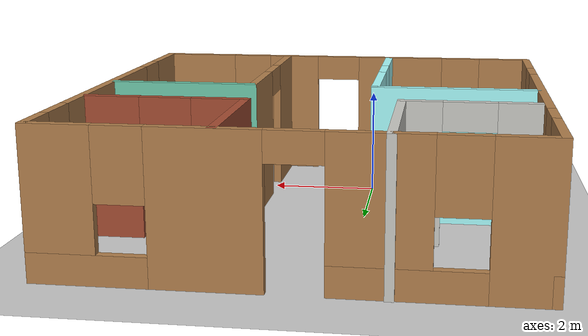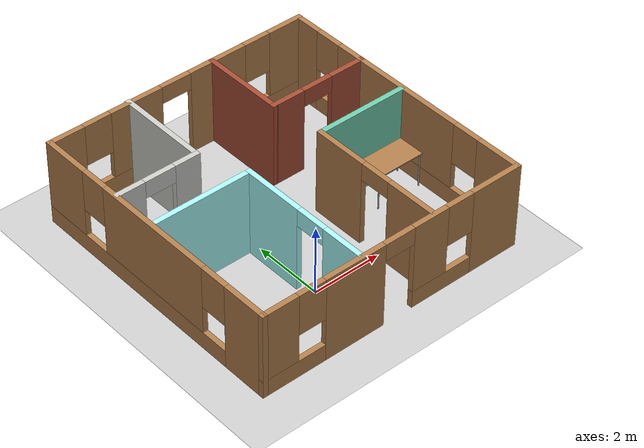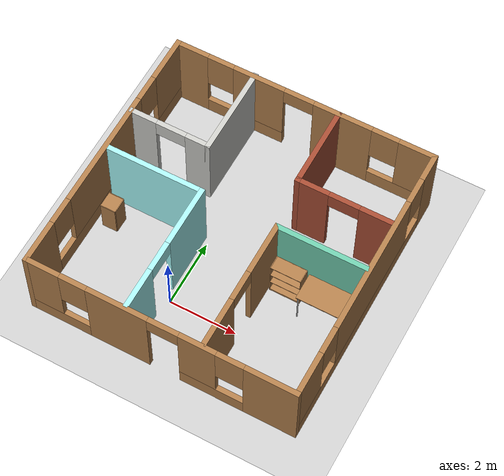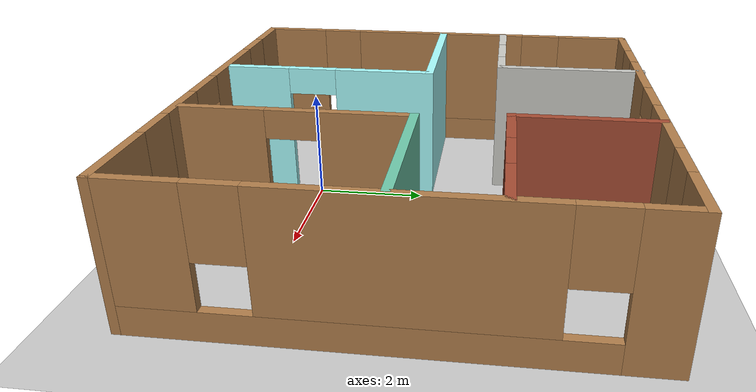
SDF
<sdf version="1.7">
 <world name="default">
  <light name="sun" type="directional">
   <pose>0 0 10 0 -0 0</pose>
   <diffuse>0.8 0.8 0.8 1</diffuse>
   <specular>0.2 0.2 0.2 1</specular>
   <attenuation>
    <range>1000</range>
    <constant>0.9</constant>
    <linear>0.01</linear>
    <quadratic>0.001</quadratic>
   </attenuation>
   <direction>-0.5 0.1 -0.9</direction>
   <spot><inner_angle>0</inner_angle><outer_angle>0</outer_angle><falloff>0</falloff></spot>
  </light>
  <model name="ground_plane">
   <static>1</static>
   <link name="link">
    <collision name="collision">
     <geometry><plane><normal>0 0 1</normal><size>100 100</size></plane></geometry>
     <surface>
      <contact><collide_bitmask>65535</collide_bitmask></contact>
      <friction><ode><mu>100</mu><mu2>50</mu2></ode></friction>
     </surface>
    </collision>
    <visual name="visual">
     <cast_shadows>0</cast_shadows>
     <geometry><plane><normal>0 0 1</normal><size>100 100</size></plane></geometry>
     <material>
      <script><uri>file://media/materials/scripts/gazebo.material</uri><name>Gazebo/Grey</name></script>
     </material>
    </visual>
   </link>
  </model>
  <gravity>0 0 -9.8</gravity>
  <magnetic_field>6e-06 2.3e-05 -4.2e-05</magnetic_field>
  <atmosphere type="adiabatic"/>
  <physics type="ode">
   <max_step_size>0.001</max_step_size>
   <real_time_factor>1</real_time_factor>
   <real_time_update_rate>1000</real_time_update_rate>
  </physics>
  <scene><ambient>0.4 0.4 0.4 1</ambient><background>0.7 0.7 0.7 1</background><shadows>1</shadows></scene>
  <spherical_coordinates>
   <surface_model>EARTH_WGS84</surface_model>
   <latitude_deg>0</latitude_deg>
   <longitude_deg>0</longitude_deg>
   <elevation>0</elevation>
   <heading_deg>0</heading_deg>
  </spherical_coordinates>
  <model name="casa">
   <pose>0.795 2.13883 0 0 -0 0</pose>
   <link name="Wall_0">
    <pose>-3.925 -0.013832 0 0 -0 1.5708</pose>
    <visual name="Wall_0_Visual_0">
     <pose>-3.33692 0 1.25 0 -0 0</pose>
     <geometry><box><size>1.32617 0.15 2.5</size></box></geometry>
     <material>
      <script><uri>file://media/materials/scripts/gazebo.material</uri><name>Gazebo/Wood</name></script>
      <ambient>1 1 1 1</ambient>
     </material>
     <meta><layer>0</layer></meta>
    </visual>
    <collision name="Wall_0_Collision_0">
     <geometry><box><size>1.32617 0.15 2.5</size></box></geometry>
     <pose>-3.33692 0 1.25 0 -0 0</pose>
    </collision>
    <visual name="Wall_0_Visual_1">
     <pose>0.663083 0 0.25 0 -0 0</pose>
     <geometry><box><size>6.67384 0.15 0.5</size></box></geometry>
     <material>
      <script><uri>file://media/materials/scripts/gazebo.material</uri><name>Gazebo/Wood</name></script>
      <ambient>1 1 1 1</ambient>
     </material>
     <meta><layer>0</layer></meta>
    </visual>
    <collision name="Wall_0_Collision_1">
     <geometry><box><size>6.67384 0.15 0.5</size></box></geometry>
     <pose>0.663083 0 0.25 0 -0 0</pose>
    </collision>
    <visual name="Wall_0_Visual_2">
     <pose>-0.054335 0 1.5 0 -0 0</pose>
     <geometry><box><size>3.639 0.15 2</size></box></geometry>
     <material>
      <script><uri>file://media/materials/scripts/gazebo.material</uri><name>Gazebo/Wood</name></script>
      <ambient>1 1 1 1</ambient>
     </material>
     <meta><layer>0</layer></meta>
    </visual>
    <collision name="Wall_0_Collision_2">
     <geometry><box><size>3.639 0.15 2</size></box></geometry>
     <pose>-0.054335 0 1.5 0 -0 0</pose>
    </collision>
    <visual name="Wall_0_Visual_3">
     <pose>3.28258 0 1.5 0 -0 0</pose>
     <geometry><box><size>1.43484 0.15 2</size></box></geometry>
     <material>
      <script><uri>file://media/materials/scripts/gazebo.material</uri><name>Gazebo/Wood</name></script>
      <ambient>1 1 1 1</ambient>
     </material>
     <meta><layer>0</layer></meta>
    </visual>
    <collision name="Wall_0_Collision_3">
     <geometry><box><size>1.43484 0.15 2</size></box></geometry>
     <pose>3.28258 0 1.5 0 -0 0</pose>
    </collision>
    <visual name="Wall_0_Visual_4">
     <pose>-2.27384 0 1.9 0 -0 0</pose>
     <geometry><box><size>0.8 0.15 1.2</size></box></geometry>
     <material>
      <script><uri>file://media/materials/scripts/gazebo.material</uri><name>Gazebo/Wood</name></script>
      <ambient>1 1 1 1</ambient>
     </material>
     <meta><layer>0</layer></meta>
    </visual>
    <collision name="Wall_0_Collision_4">
     <geometry><box><size>0.8 0.15 1.2</size></box></geometry>
     <pose>-2.27384 0 1.9 0 -0 0</pose>
    </collision>
    <visual name="Wall_0_Visual_5">
     <pose>2.16517 0 1.9 0 -0 0</pose>
     <geometry><box><size>0.8 0.15 1.2</size></box></geometry>
     <material>
      <script><uri>file://media/materials/scripts/gazebo.material</uri><name>Gazebo/Wood</name></script>
      <ambient>1 1 1 1</ambient>
     </material>
     <meta><layer>0</layer></meta>
    </visual>
    <collision name="Wall_0_Collision_5">
     <geometry><box><size>0.8 0.15 1.2</size></box></geometry>
     <pose>2.16517 0 1.9 0 -0 0</pose>
    </collision>
   </link>
   <link name="Wall_1">
    <pose>0 3.91117 0 0 -0 0</pose>
    <visual name="Wall_1_Visual_0">
     <pose>-3.47697 0 1.25 0 -0 0</pose>
     <geometry><box><size>1.04606 0.15 2.5</size></box></geometry>
     <material>
      <script><uri>file://media/materials/scripts/gazebo.material</uri><name>Gazebo/Wood</name></script>
      <ambient>1 1 1 1</ambient>
     </material>
     <meta><layer>0</layer></meta>
    </visual>
    <collision name="Wall_1_Collision_0">
     <geometry><box><size>1.04606 0.15 2.5</size></box></geometry>
     <pose>-3.47697 0 1.25 0 -0 0</pose>
    </collision>
    <visual name="Wall_1_Visual_1">
     <pose>1.20081 0 1.25 0 -0 0</pose>
     <geometry><box><size>1.7645 0.15 2.5</size></box></geometry>
     <material>
      <script><uri>file://media/materials/scripts/gazebo.material</uri><name>Gazebo/Wood</name></script>
      <ambient>1 1 1 1</ambient>
     </material>
     <meta><layer>0</layer></meta>
    </visual>
    <collision name="Wall_1_Collision_1">
     <geometry><box><size>1.7645 0.15 2.5</size></box></geometry>
     <pose>1.20081 0 1.25 0 -0 0</pose>
    </collision>
    <visual name="Wall_1_Visual_2">
     <pose>-1.76769 0 0.25 0 -0 0</pose>
     <geometry><box><size>2.3725 0.15 0.5</size></box></geometry>
     <material>
      <script><uri>file://media/materials/scripts/gazebo.material</uri><name>Gazebo/Wood</name></script>
      <ambient>1 1 1 1</ambient>
     </material>
     <meta><layer>0</layer></meta>
    </visual>
    <collision name="Wall_1_Collision_2">
     <geometry><box><size>2.3725 0.15 0.5</size></box></geometry>
     <pose>-1.76769 0 0.25 0 -0 0</pose>
    </collision>
    <visual name="Wall_1_Visual_3">
     <pose>3.04153 0 0.25 0 -0 0</pose>
     <geometry><box><size>1.91694 0.15 0.5</size></box></geometry>
     <material>
      <script><uri>file://media/materials/scripts/gazebo.material</uri><name>Gazebo/Wood</name></script>
      <ambient>1 1 1 1</ambient>
     </material>
     <meta><layer>0</layer></meta>
    </visual>
    <collision name="Wall_1_Collision_3">
     <geometry><box><size>1.91694 0.15 0.5</size></box></geometry>
     <pose>3.04153 0 0.25 0 -0 0</pose>
    </collision>
    <visual name="Wall_1_Visual_4">
     <pose>-1.36769 0 1.5 0 -0 0</pose>
     <geometry><box><size>1.5725 0.15 2</size></box></geometry>
     <material>
      <script><uri>file://media/materials/scripts/gazebo.material</uri><name>Gazebo/Wood</name></script>
      <ambient>1 1 1 1</ambient>
     </material>
     <meta><layer>0</layer></meta>
    </visual>
    <collision name="Wall_1_Collision_4">
     <geometry><box><size>1.5725 0.15 2</size></box></geometry>
     <pose>-1.36769 0 1.5 0 -0 0</pose>
    </collision>
    <visual name="Wall_1_Visual_5">
     <pose>-1.36769 0 1.5 0 -0 0</pose>
     <geometry><box><size>1.5725 0.15 2</size></box></geometry>
     <material>
      <script><uri>file://media/materials/scripts/gazebo.material</uri><name>Gazebo/Wood</name></script>
      <ambient>1 1 1 1</ambient>
     </material>
     <meta><layer>0</layer></meta>
    </visual>
    <collision name="Wall_1_Collision_5">
     <geometry><box><size>1.5725 0.15 2</size></box></geometry>
     <pose>-1.36769 0 1.5 0 -0 0</pose>
    </collision>
    <visual name="Wall_1_Visual_6">
     <pose>3.44153 0 1.5 0 -0 0</pose>
     <geometry><box><size>1.11694 0.15 2</size></box></geometry>
     <material>
      <script><uri>file://media/materials/scripts/gazebo.material</uri><name>Gazebo/Wood</name></script>
      <ambient>1 1 1 1</ambient>
     </material>
     <meta><layer>0</layer></meta>
    </visual>
    <collision name="Wall_1_Collision_6">
     <geometry><box><size>1.11694 0.15 2</size></box></geometry>
     <pose>3.44153 0 1.5 0 -0 0</pose>
    </collision>
    <visual name="Wall_1_Visual_7">
     <pose>-2.55394 0 1.9 0 -0 0</pose>
     <geometry><box><size>0.8 0.15 1.2</size></box></geometry>
     <material>
      <script><uri>file://media/materials/scripts/gazebo.material</uri><name>Gazebo/Wood</name></script>
      <ambient>1 1 1 1</ambient>
     </material>
     <meta><layer>0</layer></meta>
    </visual>
    <collision name="Wall_1_Collision_7">
     <geometry><box><size>0.8 0.15 1.2</size></box></geometry>
     <pose>-2.55394 0 1.9 0 -0 0</pose>
    </collision>
    <visual name="Wall_1_Visual_8">
     <pose>2.48306 0 1.9 0 -0 0</pose>
     <geometry><box><size>0.8 0.15 1.2</size></box></geometry>
     <material>
      <script><uri>file://media/materials/scripts/gazebo.material</uri><name>Gazebo/Wood</name></script>
      <ambient>1 1 1 1</ambient>
     </material>
     <meta><layer>0</layer></meta>
    </visual>
    <collision name="Wall_1_Collision_8">
     <geometry><box><size>0.8 0.15 1.2</size></box></geometry>
     <pose>2.48306 0 1.9 0 -0 0</pose>
    </collision>
    <visual name="Wall_1_Visual_9">
     <pose>-0.13144 0 2.25 0 -0 0</pose>
     <geometry><box><size>0.9 0.15 0.5</size></box></geometry>
     <material>
      <script><uri>file://media/materials/scripts/gazebo.material</uri><name>Gazebo/Wood</name></script>
      <ambient>1 1 1 1</ambient>
     </material>
     <meta><layer>0</layer></meta>
    </visual>
    <collision name="Wall_1_Collision_9">
     <geometry><box><size>0.9 0.15 0.5</size></box></geometry>
     <pose>-0.13144 0 2.25 0 -0 0</pose>
    </collision>
    <visual name="Wall_1_Visual_10">
     <pose>-0.13144 0 2.25 0 -0 0</pose>
     <geometry><box><size>0.9 0.15 0.5</size></box></geometry>
     <material>
      <script><uri>file://media/materials/scripts/gazebo.material</uri><name>Gazebo/Wood</name></script>
      <ambient>1 1 1 1</ambient>
     </material>
     <meta><layer>0</layer></meta>
    </visual>
    <collision name="Wall_1_Collision_10">
     <geometry><box><size>0.9 0.15 0.5</size></box></geometry>
     <pose>-0.13144 0 2.25 0 -0 0</pose>
    </collision>
   </link>
   <link name="Wall_10">
    <pose>1.24856 -1.91117 0 0 -0 1.5708</pose>
    <visual name="Wall_10_Visual_0">
     <pose>-1.256 0 1.25 0 -0 0</pose>
     <geometry><box><size>1.488 0.15 2.5</size></box></geometry>
     <material>
      <script><uri>file://media/materials/scripts/gazebo.material</uri><name>Gazebo/Wood</name></script>
      <ambient>1 1 1 1</ambient>
     </material>
     <meta><layer>0</layer></meta>
    </visual>
    <collision name="Wall_10_Collision_0">
     <geometry><box><size>1.488 0.15 2.5</size></box></geometry>
     <pose>-1.256 0 1.25 0 -0 0</pose>
    </collision>
    <visual name="Wall_10_Visual_1">
     <pose>1.194 0 1.25 0 -0 0</pose>
     <geometry><box><size>1.612 0.15 2.5</size></box></geometry>
     <material>
      <script><uri>file://media/materials/scripts/gazebo.material</uri><name>Gazebo/Wood</name></script>
      <ambient>1 1 1 1</ambient>
     </material>
     <meta><layer>0</layer></meta>
    </visual>
    <collision name="Wall_10_Collision_1">
     <geometry><box><size>1.612 0.15 2.5</size></box></geometry>
     <pose>1.194 0 1.25 0 -0 0</pose>
    </collision>
    <visual name="Wall_10_Visual_2">
     <pose>-0.062 0 2.25 0 -0 0</pose>
     <geometry><box><size>0.9 0.15 0.5</size></box></geometry>
     <material>
      <script><uri>file://media/materials/scripts/gazebo.material</uri><name>Gazebo/Wood</name></script>
      <ambient>1 1 1 1</ambient>
     </material>
     <meta><layer>0</layer></meta>
    </visual>
    <collision name="Wall_10_Collision_2">
     <geometry><box><size>0.9 0.15 0.5</size></box></geometry>
     <pose>-0.062 0 2.25 0 -0 0</pose>
    </collision>
   </link>
   <link name="Wall_11">
    <collision name="Wall_11_Collision">
     <geometry><box><size>2.75 0.15 2.5</size></box></geometry>
     <pose>0 0 1.25 0 -0 0</pose>
    </collision>
    <visual name="Wall_11_Visual">
     <pose>0 0 1.25 0 -0 0</pose>
     <geometry><box><size>2.75 0.15 2.5</size></box></geometry>
     <material>
      <script><uri>file://media/materials/scripts/gazebo.material</uri><name>Gazebo/Grey</name></script>
      <ambient>0.435294 0.796078 0.67451 1</ambient>
     </material>
     <meta><layer>0</layer></meta>
    </visual>
    <pose>2.54856 0.013833 0 0 -0 0</pose>
   </link>
   <link name="Wall_13">
    <pose>-2.70544 1.33883 0 0 -0 0</pose>
    <visual name="Wall_13_Visual_0">
     <pose>-0.828 0 1.25 0 -0 0</pose>
     <geometry><box><size>0.844 0.15 2.5</size></box></geometry>
     <material>
      <script><uri>file://media/materials/scripts/gazebo.material</uri><name>Gazebo/CeilingTiled</name></script>
      <ambient>1 1 1 1</ambient>
     </material>
     <meta><layer>0</layer></meta>
    </visual>
    <collision name="Wall_13_Collision_0">
     <geometry><box><size>0.844 0.15 2.5</size></box></geometry>
     <pose>-0.828 0 1.25 0 -0 0</pose>
    </collision>
    <visual name="Wall_13_Visual_1">
     <pose>0.872 0 1.25 0 -0 0</pose>
     <geometry><box><size>0.756 0.15 2.5</size></box></geometry>
     <material>
      <script><uri>file://media/materials/scripts/gazebo.material</uri><name>Gazebo/CeilingTiled</name></script>
      <ambient>1 1 1 1</ambient>
     </material>
     <meta><layer>0</layer></meta>
    </visual>
    <collision name="Wall_13_Collision_1">
     <geometry><box><size>0.756 0.15 2.5</size></box></geometry>
     <pose>0.872 0 1.25 0 -0 0</pose>
    </collision>
    <visual name="Wall_13_Visual_2">
     <pose>0.044 0 2.25 0 -0 0</pose>
     <geometry><box><size>0.9 0.15 0.5</size></box></geometry>
     <material>
      <script><uri>file://media/materials/scripts/gazebo.material</uri><name>Gazebo/CeilingTiled</name></script>
      <ambient>1 1 1 1</ambient>
     </material>
     <meta><layer>0</layer></meta>
    </visual>
    <collision name="Wall_13_Collision_2">
     <geometry><box><size>0.9 0.15 0.5</size></box></geometry>
     <pose>0.044 0 2.25 0 -0 0</pose>
    </collision>
   </link>
   <link name="Wall_14">
    <collision name="Wall_14_Collision">
     <geometry><box><size>2.75 0.15 2.5</size></box></geometry>
     <pose>0 0 1.25 0 -0 0</pose>
    </collision>
    <visual name="Wall_14_Visual">
     <pose>0 0 1.25 0 -0 0</pose>
     <geometry><box><size>2.75 0.15 2.5</size></box></geometry>
     <material>
      <script><uri>file://media/materials/scripts/gazebo.material</uri><name>Gazebo/CeilingTiled</name></script>
      <ambient>1 1 1 1</ambient>
     </material>
     <meta><layer>0</layer></meta>
    </visual>
    <pose>-1.53044 2.63883 0 0 -0 1.5708</pose>
   </link>
   <link name="Wall_16">
    <collision name="Wall_16_Collision">
     <geometry><box><size>2.5 0.15 2.5</size></box></geometry>
     <pose>0 0 1.25 0 -0 0</pose>
    </collision>
    <visual name="Wall_16_Visual">
     <pose>0 0 1.25 0 -0 0</pose>
     <geometry><box><size>2.5 0.15 2.5</size></box></geometry>
     <material>
      <script><uri>file://media/materials/scripts/gazebo.material</uri><name>Gazebo/Bricks</name></script>
      <ambient>1 1 1 1</ambient>
     </material>
     <meta><layer>0</layer></meta>
    </visual>
    <pose>1.06456 2.71683 0 0 -0 -1.5708</pose>
   </link>
   <link name="Wall_17">
    <pose>2.48956 1.54183 0 0 -0 0</pose>
    <visual name="Wall_17_Visual_0">
     <pose>-0.9975 0 1.25 0 -0 0</pose>
     <geometry><box><size>1.005 0.15 2.5</size></box></geometry>
     <material>
      <script><uri>file://media/materials/scripts/gazebo.material</uri><name>Gazebo/Bricks</name></script>
      <ambient>1 1 1 1</ambient>
     </material>
     <meta><layer>0</layer></meta>
    </visual>
    <collision name="Wall_17_Collision_0">
     <geometry><box><size>1.005 0.15 2.5</size></box></geometry>
     <pose>-0.9975 0 1.25 0 -0 0</pose>
    </collision>
    <visual name="Wall_17_Visual_1">
     <pose>0.9525 0 1.25 0 -0 0</pose>
     <geometry><box><size>1.095 0.15 2.5</size></box></geometry>
     <material>
      <script><uri>file://media/materials/scripts/gazebo.material</uri><name>Gazebo/Bricks</name></script>
      <ambient>1 1 1 1</ambient>
     </material>
     <meta><layer>0</layer></meta>
    </visual>
    <collision name="Wall_17_Collision_1">
     <geometry><box><size>1.095 0.15 2.5</size></box></geometry>
     <pose>0.9525 0 1.25 0 -0 0</pose>
    </collision>
    <visual name="Wall_17_Visual_2">
     <pose>-0.045 0 2.25 0 -0 0</pose>
     <geometry><box><size>0.9 0.15 0.5</size></box></geometry>
     <material>
      <script><uri>file://media/materials/scripts/gazebo.material</uri><name>Gazebo/Bricks</name></script>
      <ambient>1 1 1 1</ambient>
     </material>
     <meta><layer>0</layer></meta>
    </visual>
    <collision name="Wall_17_Collision_2">
     <geometry><box><size>0.9 0.15 0.5</size></box></geometry>
     <pose>-0.045 0 2.25 0 -0 0</pose>
    </collision>
   </link>
   <link name="Wall_2">
    <pose>3.925 -0.013832 0 0 -0 -1.5708</pose>
    <visual name="Wall_2_Visual_0">
     <pose>-3.56633 0 1.25 0 -0 0</pose>
     <geometry><box><size>0.867334 0.15 2.5</size></box></geometry>
     <material>
      <script><uri>file://media/materials/scripts/gazebo.material</uri><name>Gazebo/Wood</name></script>
      <ambient>1 1 1 1</ambient>
     </material>
     <meta><layer>0</layer></meta>
    </visual>
    <collision name="Wall_2_Collision_0">
     <geometry><box><size>0.867334 0.15 2.5</size></box></geometry>
     <pose>-3.56633 0 1.25 0 -0 0</pose>
    </collision>
    <visual name="Wall_2_Visual_1">
     <pose>0.433667 0 0.25 0 -0 0</pose>
     <geometry><box><size>7.13267 0.15 0.5</size></box></geometry>
     <material>
      <script><uri>file://media/materials/scripts/gazebo.material</uri><name>Gazebo/Wood</name></script>
      <ambient>1 1 1 1</ambient>
     </material>
     <meta><layer>0</layer></meta>
    </visual>
    <collision name="Wall_2_Collision_1">
     <geometry><box><size>7.13267 0.15 0.5</size></box></geometry>
     <pose>0.433667 0 0.25 0 -0 0</pose>
    </collision>
    <visual name="Wall_2_Visual_2">
     <pose>-0.240915 0 1.5 0 -0 0</pose>
     <geometry><box><size>4.1835 0.15 2</size></box></geometry>
     <material>
      <script><uri>file://media/materials/scripts/gazebo.material</uri><name>Gazebo/Wood</name></script>
      <ambient>1 1 1 1</ambient>
     </material>
     <meta><layer>0</layer></meta>
    </visual>
    <collision name="Wall_2_Collision_2">
     <geometry><box><size>4.1835 0.15 2</size></box></geometry>
     <pose>-0.240915 0 1.5 0 -0 0</pose>
    </collision>
    <visual name="Wall_2_Visual_3">
     <pose>3.32542 0 1.5 0 -0 0</pose>
     <geometry><box><size>1.34916 0.15 2</size></box></geometry>
     <material>
      <script><uri>file://media/materials/scripts/gazebo.material</uri><name>Gazebo/Wood</name></script>
      <ambient>1 1 1 1</ambient>
     </material>
     <meta><layer>0</layer></meta>
    </visual>
    <collision name="Wall_2_Collision_3">
     <geometry><box><size>1.34916 0.15 2</size></box></geometry>
     <pose>3.32542 0 1.5 0 -0 0</pose>
    </collision>
    <visual name="Wall_2_Visual_4">
     <pose>-2.73267 0 1.9 0 -0 0</pose>
     <geometry><box><size>0.8 0.15 1.2</size></box></geometry>
     <material>
      <script><uri>file://media/materials/scripts/gazebo.material</uri><name>Gazebo/Wood</name></script>
      <ambient>1 1 1 1</ambient>
     </material>
     <meta><layer>0</layer></meta>
    </visual>
    <collision name="Wall_2_Collision_4">
     <geometry><box><size>0.8 0.15 1.2</size></box></geometry>
     <pose>-2.73267 0 1.9 0 -0 0</pose>
    </collision>
    <visual name="Wall_2_Visual_5">
     <pose>2.25083 0 1.9 0 -0 0</pose>
     <geometry><box><size>0.8 0.15 1.2</size></box></geometry>
     <material>
      <script><uri>file://media/materials/scripts/gazebo.material</uri><name>Gazebo/Wood</name></script>
      <ambient>1 1 1 1</ambient>
     </material>
     <meta><layer>0</layer></meta>
    </visual>
    <collision name="Wall_2_Collision_5">
     <geometry><box><size>0.8 0.15 1.2</size></box></geometry>
     <pose>2.25083 0 1.9 0 -0 0</pose>
    </collision>
   </link>
   <link name="Wall_3">
    <pose>0 -3.93883 0 0 -0 3.14159</pose>
    <visual name="Wall_3_Visual_0">
     <pose>-3.22303 0 1.25 0 -0 0</pose>
     <geometry><box><size>1.55394 0.15 2.5</size></box></geometry>
     <material>
      <script><uri>file://media/materials/scripts/gazebo.material</uri><name>Gazebo/Wood</name></script>
      <ambient>1 1 1 1</ambient>
     </material>
     <meta><layer>0</layer></meta>
    </visual>
    <collision name="Wall_3_Collision_0">
     <geometry><box><size>1.55394 0.15 2.5</size></box></geometry>
     <pose>-3.22303 0 1.25 0 -0 0</pose>
    </collision>
    <visual name="Wall_3_Visual_1">
     <pose>1.22969 0 1.25 0 -0 0</pose>
     <geometry><box><size>1.8025 0.15 2.5</size></box></geometry>
     <material>
      <script><uri>file://media/materials/scripts/gazebo.material</uri><name>Gazebo/Wood</name></script>
      <ambient>1 1 1 1</ambient>
     </material>
     <meta><layer>0</layer></meta>
    </visual>
    <collision name="Wall_3_Collision_1">
     <geometry><box><size>1.8025 0.15 2.5</size></box></geometry>
     <pose>1.22969 0 1.25 0 -0 0</pose>
    </collision>
    <visual name="Wall_3_Visual_2">
     <pose>-1.50881 0 0.25 0 -0 0</pose>
     <geometry><box><size>1.8745 0.15 0.5</size></box></geometry>
     <material>
      <script><uri>file://media/materials/scripts/gazebo.material</uri><name>Gazebo/Wood</name></script>
      <ambient>1 1 1 1</ambient>
     </material>
     <meta><layer>0</layer></meta>
    </visual>
    <collision name="Wall_3_Collision_2">
     <geometry><box><size>1.8745 0.15 0.5</size></box></geometry>
     <pose>-1.50881 0 0.25 0 -0 0</pose>
    </collision>
    <visual name="Wall_3_Visual_3">
     <pose>3.06547 0 0.25 0 -0 0</pose>
     <geometry><box><size>1.86906 0.15 0.5</size></box></geometry>
     <material>
      <script><uri>file://media/materials/scripts/gazebo.material</uri><name>Gazebo/Wood</name></script>
      <ambient>1 1 1 1</ambient>
     </material>
     <meta><layer>0</layer></meta>
    </visual>
    <collision name="Wall_3_Collision_3">
     <geometry><box><size>1.86906 0.15 0.5</size></box></geometry>
     <pose>3.06547 0 0.25 0 -0 0</pose>
    </collision>
    <visual name="Wall_3_Visual_4">
     <pose>-1.10881 0 1.5 0 -0 0</pose>
     <geometry><box><size>1.0745 0.15 2</size></box></geometry>
     <material>
      <script><uri>file://media/materials/scripts/gazebo.material</uri><name>Gazebo/Wood</name></script>
      <ambient>1 1 1 1</ambient>
     </material>
     <meta><layer>0</layer></meta>
    </visual>
    <collision name="Wall_3_Collision_4">
     <geometry><box><size>1.0745 0.15 2</size></box></geometry>
     <pose>-1.10881 0 1.5 0 -0 0</pose>
    </collision>
    <visual name="Wall_3_Visual_5">
     <pose>-1.10881 0 1.5 0 -0 0</pose>
     <geometry><box><size>1.0745 0.15 2</size></box></geometry>
     <material>
      <script><uri>file://media/materials/scripts/gazebo.material</uri><name>Gazebo/Wood</name></script>
      <ambient>1 1 1 1</ambient>
     </material>
     <meta><layer>0</layer></meta>
    </visual>
    <collision name="Wall_3_Collision_5">
     <geometry><box><size>1.0745 0.15 2</size></box></geometry>
     <pose>-1.10881 0 1.5 0 -0 0</pose>
    </collision>
    <visual name="Wall_3_Visual_6">
     <pose>3.46547 0 1.5 0 -0 0</pose>
     <geometry><box><size>1.06906 0.15 2</size></box></geometry>
     <material>
      <script><uri>file://media/materials/scripts/gazebo.material</uri><name>Gazebo/Wood</name></script>
      <ambient>1 1 1 1</ambient>
     </material>
     <meta><layer>0</layer></meta>
    </visual>
    <collision name="Wall_3_Collision_6">
     <geometry><box><size>1.06906 0.15 2</size></box></geometry>
     <pose>3.46547 0 1.5 0 -0 0</pose>
    </collision>
    <visual name="Wall_3_Visual_7">
     <pose>-2.04606 0 1.9 0 -0 0</pose>
     <geometry><box><size>0.8 0.15 1.2</size></box></geometry>
     <material>
      <script><uri>file://media/materials/scripts/gazebo.material</uri><name>Gazebo/Wood</name></script>
      <ambient>1 1 1 1</ambient>
     </material>
     <meta><layer>0</layer></meta>
    </visual>
    <collision name="Wall_3_Collision_7">
     <geometry><box><size>0.8 0.15 1.2</size></box></geometry>
     <pose>-2.04606 0 1.9 0 -0 0</pose>
    </collision>
    <visual name="Wall_3_Visual_8">
     <pose>2.53094 0 1.9 0 -0 0</pose>
     <geometry><box><size>0.8 0.15 1.2</size></box></geometry>
     <material>
      <script><uri>file://media/materials/scripts/gazebo.material</uri><name>Gazebo/Wood</name></script>
      <ambient>1 1 1 1</ambient>
     </material>
     <meta><layer>0</layer></meta>
    </visual>
    <collision name="Wall_3_Collision_8">
     <geometry><box><size>0.8 0.15 1.2</size></box></geometry>
     <pose>2.53094 0 1.9 0 -0 0</pose>
    </collision>
    <visual name="Wall_3_Visual_9">
     <pose>-0.12156 0 2.25 0 -0 0</pose>
     <geometry><box><size>0.9 0.15 0.5</size></box></geometry>
     <material>
      <script><uri>file://media/materials/scripts/gazebo.material</uri><name>Gazebo/Wood</name></script>
      <ambient>1 1 1 1</ambient>
     </material>
     <meta><layer>0</layer></meta>
    </visual>
    <collision name="Wall_3_Collision_9">
     <geometry><box><size>0.9 0.15 0.5</size></box></geometry>
     <pose>-0.12156 0 2.25 0 -0 0</pose>
    </collision>
    <visual name="Wall_3_Visual_10">
     <pose>-0.12156 0 2.25 0 -0 0</pose>
     <geometry><box><size>0.9 0.15 0.5</size></box></geometry>
     <material>
      <script><uri>file://media/materials/scripts/gazebo.material</uri><name>Gazebo/Wood</name></script>
      <ambient>1 1 1 1</ambient>
     </material>
     <meta><layer>0</layer></meta>
    </visual>
    <collision name="Wall_3_Collision_10">
     <geometry><box><size>0.9 0.15 0.5</size></box></geometry>
     <pose>-0.12156 0 2.25 0 -0 0</pose>
    </collision>
   </link>
   <link name="Wall_5">
    <collision name="Wall_5_Collision">
     <geometry><box><size>3 0.15 2.5</size></box></geometry>
     <pose>0 0 1.25 0 -0 0</pose>
    </collision>
    <visual name="Wall_5_Visual">
     <pose>0 0 1.25 0 -0 0</pose>
     <geometry><box><size>3 0.15 2.5</size></box></geometry>
     <material>
      <script><uri>file://media/materials/scripts/gazebo.material</uri><name>Gazebo/Grey</name></script>
      <ambient>0.666667 1 1 1</ambient>
     </material>
     <meta><layer>0</layer></meta>
    </visual>
    <pose>-2.41694 0.012333 0 0 -0 0</pose>
   </link>
   <link name="Wall_8">
    <pose>-0.99194 -1.91267 0 0 -0 -1.5708</pose>
    <visual name="Wall_8_Visual_0">
     <pose>-1.06825 0 1.25 0 -0 0</pose>
     <geometry><box><size>1.8635 0.15 2.5</size></box></geometry>
     <material>
      <script><uri>file://media/materials/scripts/gazebo.material</uri><name>Gazebo/Grey</name></script>
      <ambient>0.666667 1 1 1</ambient>
     </material>
     <meta><layer>0</layer></meta>
    </visual>
    <collision name="Wall_8_Collision_0">
     <geometry><box><size>1.8635 0.15 2.5</size></box></geometry>
     <pose>-1.06825 0 1.25 0 -0 0</pose>
    </collision>
    <visual name="Wall_8_Visual_1">
     <pose>1.38175 0 1.25 0 -0 0</pose>
     <geometry><box><size>1.2365 0.15 2.5</size></box></geometry>
     <material>
      <script><uri>file://media/materials/scripts/gazebo.material</uri><name>Gazebo/Grey</name></script>
      <ambient>0.666667 1 1 1</ambient>
     </material>
     <meta><layer>0</layer></meta>
    </visual>
    <collision name="Wall_8_Collision_1">
     <geometry><box><size>1.2365 0.15 2.5</size></box></geometry>
     <pose>1.38175 0 1.25 0 -0 0</pose>
    </collision>
    <visual name="Wall_8_Visual_2">
     <pose>0.3135 0 2.25 0 -0 0</pose>
     <geometry><box><size>0.9 0.15 0.5</size></box></geometry>
     <material>
      <script><uri>file://media/materials/scripts/gazebo.material</uri><name>Gazebo/Grey</name></script>
      <ambient>0.666667 1 1 1</ambient>
     </material>
     <meta><layer>0</layer></meta>
    </visual>
    <collision name="Wall_8_Collision_2">
     <geometry><box><size>0.9 0.15 0.5</size></box></geometry>
     <pose>0.3135 0 2.25 0 -0 0</pose>
    </collision>
   </link>
   <static>1</static>
  </model>
  <model name="cabinet">
   <static>1</static>
   <link name="cabinet_bottom_plate">
    <inertial>
     <pose>0 0 -1 0 -0 0</pose>
     <inertia><ixx>2.05</ixx><ixy>0</ixy><ixz>0</ixz><iyy>2.05</iyy><iyz>0</iyz><izz>2.05</izz></inertia>
     <mass>25</mass>
    </inertial>
    <collision name="cabinet_bottom_plate_geom">
     <pose>0 0 0.01 0 -0 0</pose>
     <geometry><box><size>0.45 0.45 0.02</size></box></geometry>
    </collision>
    <visual name="cabinet_bottom_plate_geom_visual">
     <pose>0 0 0.01 0 -0 0</pose>
     <geometry><box><size>0.45 0.45 0.02</size></box></geometry>
     <material>
      <script><uri>file://media/materials/scripts/gazebo.material</uri><name>Gazebo/Wood</name></script>
     </material>
    </visual>
    <collision name="cabinet_bottom_plate_geom_cabinet_back_plate">
     <pose>0.235 0 0.51 0 -0 0</pose>
     <geometry><box><size>0.02 0.45 1.02</size></box></geometry>
    </collision>
    <visual name="cabinet_bottom_plate_geom_cabinet_back_plate_visual">
     <pose>0.235 0 0.51 0 -0 0</pose>
     <geometry><box><size>0.02 0.45 1.02</size></box></geometry>
     <material>
      <script><uri>file://media/materials/scripts/gazebo.material</uri><name>Gazebo/Wood</name></script>
     </material>
    </visual>
    <collision name="cabinet_bottom_plate_geom_cabinet_left_plate">
     <pose>0 0.235 0.51 0 -0 0</pose>
     <geometry><box><size>0.45 0.02 1.02</size></box></geometry>
    </collision>
    <visual name="cabinet_bottom_plate_geom_cabinet_left_plate_visual">
     <pose>0 0.235 0.51 0 -0 0</pose>
     <geometry><box><size>0.45 0.02 1.02</size></box></geometry>
     <material>
      <script><uri>file://media/materials/scripts/gazebo.material</uri><name>Gazebo/Wood</name></script>
     </material>
    </visual>
    <collision name="cabinet_bottom_plate_geom_cabinet_middle_plate">
     <pose>0 0 0.51 0 -0 0</pose>
     <geometry><box><size>0.45 0.45 0.02</size></box></geometry>
    </collision>
    <visual name="cabinet_bottom_plate_geom_cabinet_middle_plate_visual">
     <pose>0 0 0.51 0 -0 0</pose>
     <geometry><box><size>0.45 0.45 0.02</size></box></geometry>
     <material>
      <script><uri>file://media/materials/scripts/gazebo.material</uri><name>Gazebo/Wood</name></script>
     </material>
    </visual>
    <collision name="cabinet_bottom_plate_geom_cabinet_right_plate">
     <pose>0 -0.235 0.51 0 -0 0</pose>
     <geometry><box><size>0.45 0.02 1.02</size></box></geometry>
    </collision>
    <visual name="cabinet_bottom_plate_geom_cabinet_right_plate_visual">
     <pose>0 -0.235 0.51 0 -0 0</pose>
     <geometry><box><size>0.45 0.02 1.02</size></box></geometry>
     <material>
      <script><uri>file://media/materials/scripts/gazebo.material</uri><name>Gazebo/Wood</name></script>
     </material>
    </visual>
    <collision name="cabinet_bottom_plate_geom_cabinet_top_plate">
     <pose>0 0 1.01 0 -0 0</pose>
     <geometry><box><size>0.45 0.45 0.02</size></box></geometry>
    </collision>
    <visual name="cabinet_bottom_plate_geom_cabinet_top_plate_visual">
     <pose>0 0 1.01 0 -0 0</pose>
     <geometry><box><size>0.45 0.45 0.02</size></box></geometry>
     <material>
      <script><uri>file://media/materials/scripts/gazebo.material</uri><name>Gazebo/Wood</name></script>
     </material>
    </visual>
   </link>
   <pose>-2.61158 1.44104 0 0 -0 0</pose>
  </model>
  <model name="bookshelf">
   <static>1</static>
   <link name="link">
    <inertial><mass>1</mass></inertial>
    <collision name="back">
     <pose>0 0.005 0.6 0 -0 0</pose>
     <geometry><box><size>0.9 0.01 1.2</size></box></geometry>
    </collision>
    <visual name="visual1">
     <pose>0 0.005 0.6 0 -0 0</pose>
     <geometry><box><size>0.9 0.01 1.2</size></box></geometry>
     <material>
      <script><uri>file://media/materials/scripts/gazebo.material</uri><name>Gazebo/Wood</name></script>
     </material>
    </visual>
    <collision name="left_side">
     <pose>0.45 -0.195 0.6 0 -0 0</pose>
     <geometry><box><size>0.02 0.4 1.2</size></box></geometry>
    </collision>
    <visual name="visual2">
     <pose>0.45 -0.195 0.6 0 -0 0</pose>
     <geometry><box><size>0.02 0.4 1.2</size></box></geometry>
     <material>
      <script><uri>file://media/materials/scripts/gazebo.material</uri><name>Gazebo/Wood</name></script>
     </material>
    </visual>
    <collision name="right_side">
     <pose>-0.45 -0.195 0.6 0 -0 0</pose>
     <geometry><box><size>0.02 0.4 1.2</size></box></geometry>
    </collision>
    <visual name="visual3">
     <pose>-0.45 -0.195 0.6 0 -0 0</pose>
     <geometry><box><size>0.02 0.4 1.2</size></box></geometry>
     <material>
      <script><uri>file://media/materials/scripts/gazebo.material</uri><name>Gazebo/Wood</name></script>
     </material>
    </visual>
    <collision name="bottom">
     <pose>0 -0.195 0.03 0 -0 0</pose>
     <geometry><box><size>0.88 0.4 0.06</size></box></geometry>
    </collision>
    <visual name="visual4">
     <pose>0 -0.195 0.03 0 -0 0</pose>
     <geometry><box><size>0.88 0.4 0.06</size></box></geometry>
     <material>
      <script><uri>file://media/materials/scripts/gazebo.material</uri><name>Gazebo/Wood</name></script>
     </material>
    </visual>
    <collision name="top">
     <pose>0 -0.195 1.19 0 -0 0</pose>
     <geometry><box><size>0.88 0.4 0.02</size></box></geometry>
    </collision>
    <visual name="visual5">
     <pose>0 -0.195 1.19 0 -0 0</pose>
     <geometry><box><size>0.88 0.4 0.02</size></box></geometry>
     <material>
      <script><uri>file://media/materials/scripts/gazebo.material</uri><name>Gazebo/Wood</name></script>
     </material>
    </visual>
    <collision name="low_shelf">
     <pose>0 -0.195 0.43 0 -0 0</pose>
     <geometry><box><size>0.88 0.4 0.02</size></box></geometry>
    </collision>
    <visual name="visual6">
     <pose>0 -0.195 0.43 0 -0 0</pose>
     <geometry><box><size>0.88 0.4 0.02</size></box></geometry>
     <material>
      <script><uri>file://media/materials/scripts/gazebo.material</uri><name>Gazebo/Wood</name></script>
     </material>
    </visual>
    <collision name="high_shelf">
     <pose>0 -0.195 0.8 0 -0 0</pose>
     <geometry><box><size>0.88 0.4 0.02</size></box></geometry>
    </collision>
    <visual name="visual7">
     <pose>0 -0.195 0.8 0 -0 0</pose>
     <geometry><box><size>0.88 0.4 0.02</size></box></geometry>
     <material>
      <script><uri>file://media/materials/scripts/gazebo.material</uri><name>Gazebo/Wood</name></script>
     </material>
    </visual>
   </link>
   <pose>2.60943 2.01863 0 0 -0 0</pose>
  </model>
  <model name="table">
   <static>1</static>
   <link name="link">
    <collision name="surface">
     <pose>0 0 1 0 -0 0</pose>
     <geometry><box><size>1.5 0.8 0.03</size></box></geometry>
     <surface><friction><ode><mu>0.6</mu><mu2>0.6</mu2></ode></friction></surface>
    </collision>
    <visual name="visual1">
     <pose>0 0 1 0 -0 0</pose>
     <geometry><box><size>1.5 0.8 0.03</size></box></geometry>
     <material>
      <script><uri>file://media/materials/scripts/gazebo.material</uri><name>Gazebo/Wood</name></script>
     </material>
    </visual>
    <collision name="front_left_leg">
     <pose>0.68 0.38 0.5 0 -0 0</pose>
     <geometry><cylinder><radius>0.02</radius><length>1</length></cylinder></geometry>
    </collision>
    <visual name="front_left_leg">
     <pose>0.68 0.38 0.5 0 -0 0</pose>
     <geometry><cylinder><radius>0.02</radius><length>1</length></cylinder></geometry>
     <material>
      <script><uri>file://media/materials/scripts/gazebo.material</uri><name>Gazebo/Grey</name></script>
     </material>
    </visual>
    <collision name="front_right_leg">
     <pose>0.68 -0.38 0.5 0 -0 0</pose>
     <geometry><cylinder><radius>0.02</radius><length>1</length></cylinder></geometry>
    </collision>
    <visual name="front_right_leg">
     <pose>0.68 -0.38 0.5 0 -0 0</pose>
     <geometry><cylinder><radius>0.02</radius><length>1</length></cylinder></geometry>
     <material>
      <script><uri>file://media/materials/scripts/gazebo.material</uri><name>Gazebo/Grey</name></script>
     </material>
    </visual>
    <collision name="back_right_leg">
     <pose>-0.68 -0.38 0.5 0 -0 0</pose>
     <geometry><cylinder><radius>0.02</radius><length>1</length></cylinder></geometry>
    </collision>
    <visual name="back_right_leg">
     <pose>-0.68 -0.38 0.5 0 -0 0</pose>
     <geometry><cylinder><radius>0.02</radius><length>1</length></cylinder></geometry>
     <material>
      <script><uri>file://media/materials/scripts/gazebo.material</uri><name>Gazebo/Grey</name></script>
     </material>
    </visual>
    <collision name="back_left_leg">
     <pose>-0.68 0.38 0.5 0 -0 0</pose>
     <geometry><cylinder><radius>0.02</radius><length>1</length></cylinder></geometry>
    </collision>
    <visual name="back_left_leg">
     <pose>-0.68 0.38 0.5 0 -0 0</pose>
     <geometry><cylinder><radius>0.02</radius><length>1</length></cylinder></geometry>
     <material>
      <script><uri>file://media/materials/scripts/gazebo.material</uri><name>Gazebo/Grey</name></script>
     </material>
    </visual>
   </link>
   <pose>3.86511 1.64647 0 0 -0 0</pose>
  </model>
 </world>
</sdf>
